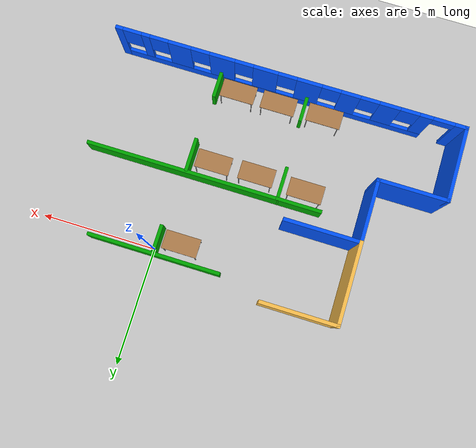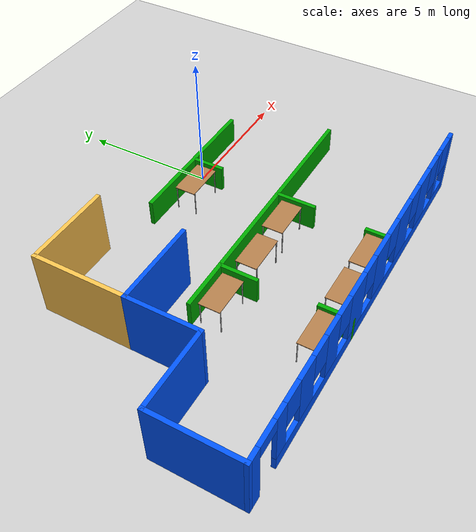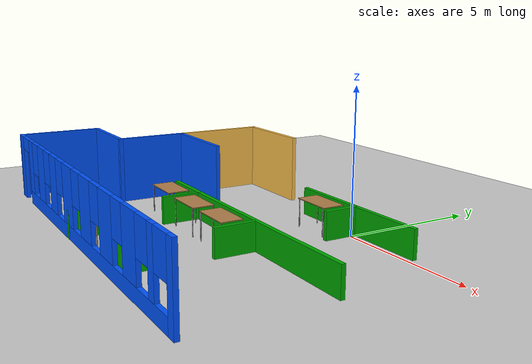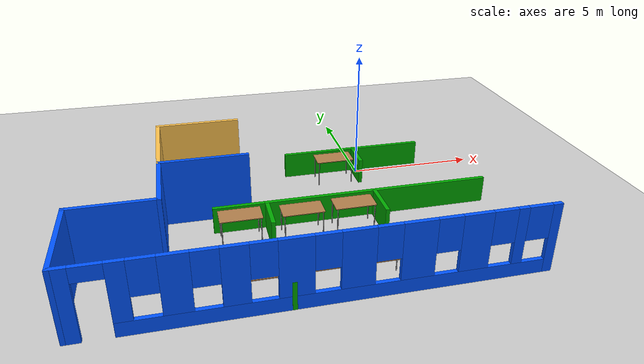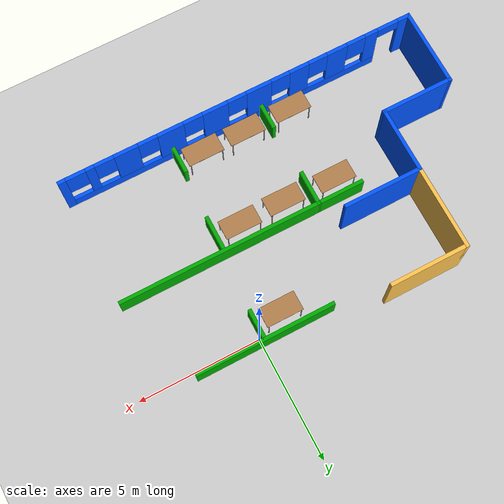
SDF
<sdf version="1.6">
 <world name="default">
  <model name="ground_plane">
   <static>1</static>
   <link name="link">
    <collision name="collision">
     <geometry><plane><normal>0 0 1</normal><size>100 100</size></plane></geometry>
     <surface><friction><ode><mu>100</mu><mu2>50</mu2></ode></friction></surface>
    </collision>
    <visual name="visual">
     <cast_shadows>0</cast_shadows>
     <geometry><plane><normal>0 0 1</normal><size>100 100</size></plane></geometry>
     <material>
      <script><uri>file://media/materials/scripts/gazebo.material</uri><name>Gazebo/Grey</name></script>
     </material>
    </visual>
   </link>
  </model>
  <model name="AMG">
   <pose>-3.41412 2.5474 0 0 -0 0</pose>
   <link name="Wall_0">
    <pose>-0.000145 -10.6988 0 0 -0 3.14159</pose>
    <visual name="Wall_0_Visual_0">
     <pose>-7.33634 0 1.25 0 -0 0</pose>
     <geometry><box><size>0.327324 0.15 2.5</size></box></geometry>
     <material>
      <script><uri>file://media/materials/scripts/gazebo.material</uri><name>Gazebo/Grey</name></script>
      <ambient>0 0.333333 1 1</ambient>
     </material>
     <meta><layer>0</layer></meta>
    </visual>
    <collision name="Wall_0_Collision_0">
     <geometry><box><size>0.327324 0.15 2.5</size></box></geometry>
     <pose>-7.33634 0 1.25 0 -0 0</pose>
    </collision>
    <visual name="Wall_0_Visual_1">
     <pose>7.22017 0 1.25 0 -0 0</pose>
     <geometry><box><size>0.559664 0.15 2.5</size></box></geometry>
     <material>
      <script><uri>file://media/materials/scripts/gazebo.material</uri><name>Gazebo/Grey</name></script>
      <ambient>0 0.333333 1 1</ambient>
     </material>
     <meta><layer>0</layer></meta>
    </visual>
    <collision name="Wall_0_Collision_1">
     <geometry><box><size>0.559664 0.15 2.5</size></box></geometry>
     <pose>7.22017 0 1.25 0 -0 0</pose>
    </collision>
    <visual name="Wall_0_Visual_2">
     <pose>-0.56617 0 0.25 0 -0 0</pose>
     <geometry><box><size>13.213 0.15 0.5</size></box></geometry>
     <material>
      <script><uri>file://media/materials/scripts/gazebo.material</uri><name>Gazebo/Grey</name></script>
      <ambient>0 0.333333 1 1</ambient>
     </material>
     <meta><layer>0</layer></meta>
    </visual>
    <collision name="Wall_0_Collision_2">
     <geometry><box><size>13.213 0.15 0.5</size></box></geometry>
     <pose>-0.56617 0 0.25 0 -0 0</pose>
    </collision>
    <visual name="Wall_0_Visual_3">
     <pose>-6.1917 0 1.5 0 -0 0</pose>
     <geometry><box><size>0.361953 0.15 2</size></box></geometry>
     <material>
      <script><uri>file://media/materials/scripts/gazebo.material</uri><name>Gazebo/Grey</name></script>
      <ambient>0 0.333333 1 1</ambient>
     </material>
     <meta><layer>0</layer></meta>
    </visual>
    <collision name="Wall_0_Collision_3">
     <geometry><box><size>0.361953 0.15 2</size></box></geometry>
     <pose>-6.1917 0 1.5 0 -0 0</pose>
    </collision>
    <visual name="Wall_0_Visual_4">
     <pose>-4.71592 0 1.5 0 -0 0</pose>
     <geometry><box><size>0.989614 0.15 2</size></box></geometry>
     <material>
      <script><uri>file://media/materials/scripts/gazebo.material</uri><name>Gazebo/Grey</name></script>
      <ambient>0 0.333333 1 1</ambient>
     </material>
     <meta><layer>0</layer></meta>
    </visual>
    <collision name="Wall_0_Collision_4">
     <geometry><box><size>0.989614 0.15 2</size></box></geometry>
     <pose>-4.71592 0 1.5 0 -0 0</pose>
    </collision>
    <visual name="Wall_0_Visual_5">
     <pose>-2.8768 0 1.5 0 -0 0</pose>
     <geometry><box><size>1.08861 0.15 2</size></box></geometry>
     <material>
      <script><uri>file://media/materials/scripts/gazebo.material</uri><name>Gazebo/Grey</name></script>
      <ambient>0 0.333333 1 1</ambient>
     </material>
     <meta><layer>0</layer></meta>
    </visual>
    <collision name="Wall_0_Collision_5">
     <geometry><box><size>1.08861 0.15 2</size></box></geometry>
     <pose>-2.8768 0 1.5 0 -0 0</pose>
    </collision>
    <visual name="Wall_0_Visual_6">
     <pose>-1.00149 0 1.5 0 -0 0</pose>
     <geometry><box><size>1.06201 0.15 2</size></box></geometry>
     <material>
      <script><uri>file://media/materials/scripts/gazebo.material</uri><name>Gazebo/Grey</name></script>
      <ambient>0 0.333333 1 1</ambient>
     </material>
     <meta><layer>0</layer></meta>
    </visual>
    <collision name="Wall_0_Collision_6">
     <geometry><box><size>1.06201 0.15 2</size></box></geometry>
     <pose>-1.00149 0 1.5 0 -0 0</pose>
    </collision>
    <visual name="Wall_0_Visual_7">
     <pose>0.860526 0 1.5 0 -0 0</pose>
     <geometry><box><size>1.06201 0.15 2</size></box></geometry>
     <material>
      <script><uri>file://media/materials/scripts/gazebo.material</uri><name>Gazebo/Grey</name></script>
      <ambient>0 0.333333 1 1</ambient>
     </material>
     <meta><layer>0</layer></meta>
    </visual>
    <collision name="Wall_0_Collision_7">
     <geometry><box><size>1.06201 0.15 2</size></box></geometry>
     <pose>0.860526 0 1.5 0 -0 0</pose>
    </collision>
    <visual name="Wall_0_Visual_8">
     <pose>2.60284 0 1.5 0 -0 0</pose>
     <geometry><box><size>0.822612 0.15 2</size></box></geometry>
     <material>
      <script><uri>file://media/materials/scripts/gazebo.material</uri><name>Gazebo/Grey</name></script>
      <ambient>0 0.333333 1 1</ambient>
     </material>
     <meta><layer>0</layer></meta>
    </visual>
    <collision name="Wall_0_Collision_8">
     <geometry><box><size>0.822612 0.15 2</size></box></geometry>
     <pose>2.60284 0 1.5 0 -0 0</pose>
    </collision>
    <visual name="Wall_0_Visual_9">
     <pose>4.25205 0 1.5 0 -0 0</pose>
     <geometry><box><size>0.875812 0.15 2</size></box></geometry>
     <material>
      <script><uri>file://media/materials/scripts/gazebo.material</uri><name>Gazebo/Grey</name></script>
      <ambient>0 0.333333 1 1</ambient>
     </material>
     <meta><layer>0</layer></meta>
    </visual>
    <collision name="Wall_0_Collision_9">
     <geometry><box><size>0.875812 0.15 2</size></box></geometry>
     <pose>4.25205 0 1.5 0 -0 0</pose>
    </collision>
    <visual name="Wall_0_Visual_10">
     <pose>5.76515 0 1.5 0 -0 0</pose>
     <geometry><box><size>0.550378 0.15 2</size></box></geometry>
     <material>
      <script><uri>file://media/materials/scripts/gazebo.material</uri><name>Gazebo/Grey</name></script>
      <ambient>0 0.333333 1 1</ambient>
     </material>
     <meta><layer>0</layer></meta>
    </visual>
    <collision name="Wall_0_Collision_10">
     <geometry><box><size>0.550378 0.15 2</size></box></geometry>
     <pose>5.76515 0 1.5 0 -0 0</pose>
    </collision>
    <visual name="Wall_0_Visual_11">
     <pose>-6.77268 0 1.9 0 -0 0</pose>
     <geometry><box><size>0.8 0.15 1.2</size></box></geometry>
     <material>
      <script><uri>file://media/materials/scripts/gazebo.material</uri><name>Gazebo/Grey</name></script>
      <ambient>0 0.333333 1 1</ambient>
     </material>
     <meta><layer>0</layer></meta>
    </visual>
    <collision name="Wall_0_Collision_11">
     <geometry><box><size>0.8 0.15 1.2</size></box></geometry>
     <pose>-6.77268 0 1.9 0 -0 0</pose>
    </collision>
    <visual name="Wall_0_Visual_12">
     <pose>-5.61072 0 1.9 0 -0 0</pose>
     <geometry><box><size>0.8 0.15 1.2</size></box></geometry>
     <material>
      <script><uri>file://media/materials/scripts/gazebo.material</uri><name>Gazebo/Grey</name></script>
      <ambient>0 0.333333 1 1</ambient>
     </material>
     <meta><layer>0</layer></meta>
    </visual>
    <collision name="Wall_0_Collision_12">
     <geometry><box><size>0.8 0.15 1.2</size></box></geometry>
     <pose>-5.61072 0 1.9 0 -0 0</pose>
    </collision>
    <visual name="Wall_0_Visual_13">
     <pose>-3.82111 0 1.9 0 -0 0</pose>
     <geometry><box><size>0.8 0.15 1.2</size></box></geometry>
     <material>
      <script><uri>file://media/materials/scripts/gazebo.material</uri><name>Gazebo/Grey</name></script>
      <ambient>0 0.333333 1 1</ambient>
     </material>
     <meta><layer>0</layer></meta>
    </visual>
    <collision name="Wall_0_Collision_13">
     <geometry><box><size>0.8 0.15 1.2</size></box></geometry>
     <pose>-3.82111 0 1.9 0 -0 0</pose>
    </collision>
    <visual name="Wall_0_Visual_14">
     <pose>-1.9325 0 1.9 0 -0 0</pose>
     <geometry><box><size>0.8 0.15 1.2</size></box></geometry>
     <material>
      <script><uri>file://media/materials/scripts/gazebo.material</uri><name>Gazebo/Grey</name></script>
      <ambient>0 0.333333 1 1</ambient>
     </material>
     <meta><layer>0</layer></meta>
    </visual>
    <collision name="Wall_0_Collision_14">
     <geometry><box><size>0.8 0.15 1.2</size></box></geometry>
     <pose>-1.9325 0 1.9 0 -0 0</pose>
    </collision>
    <visual name="Wall_0_Visual_15">
     <pose>-0.070481 0 1.9 0 -0 0</pose>
     <geometry><box><size>0.8 0.15 1.2</size></box></geometry>
     <material>
      <script><uri>file://media/materials/scripts/gazebo.material</uri><name>Gazebo/Grey</name></script>
      <ambient>0 0.333333 1 1</ambient>
     </material>
     <meta><layer>0</layer></meta>
    </visual>
    <collision name="Wall_0_Collision_15">
     <geometry><box><size>0.8 0.15 1.2</size></box></geometry>
     <pose>-0.070481 0 1.9 0 -0 0</pose>
    </collision>
    <visual name="Wall_0_Visual_16">
     <pose>1.79153 0 1.9 0 -0 0</pose>
     <geometry><box><size>0.8 0.15 1.2</size></box></geometry>
     <material>
      <script><uri>file://media/materials/scripts/gazebo.material</uri><name>Gazebo/Grey</name></script>
      <ambient>0 0.333333 1 1</ambient>
     </material>
     <meta><layer>0</layer></meta>
    </visual>
    <collision name="Wall_0_Collision_16">
     <geometry><box><size>0.8 0.15 1.2</size></box></geometry>
     <pose>1.79153 0 1.9 0 -0 0</pose>
    </collision>
    <visual name="Wall_0_Visual_17">
     <pose>3.41414 0 1.9 0 -0 0</pose>
     <geometry><box><size>0.8 0.15 1.2</size></box></geometry>
     <material>
      <script><uri>file://media/materials/scripts/gazebo.material</uri><name>Gazebo/Grey</name></script>
      <ambient>0 0.333333 1 1</ambient>
     </material>
     <meta><layer>0</layer></meta>
    </visual>
    <collision name="Wall_0_Collision_17">
     <geometry><box><size>0.8 0.15 1.2</size></box></geometry>
     <pose>3.41414 0 1.9 0 -0 0</pose>
    </collision>
    <visual name="Wall_0_Visual_18">
     <pose>5.08996 0 1.9 0 -0 0</pose>
     <geometry><box><size>0.8 0.15 1.2</size></box></geometry>
     <material>
      <script><uri>file://media/materials/scripts/gazebo.material</uri><name>Gazebo/Grey</name></script>
      <ambient>0 0.333333 1 1</ambient>
     </material>
     <meta><layer>0</layer></meta>
    </visual>
    <collision name="Wall_0_Collision_18">
     <geometry><box><size>0.8 0.15 1.2</size></box></geometry>
     <pose>5.08996 0 1.9 0 -0 0</pose>
    </collision>
    <visual name="Wall_0_Visual_19">
     <pose>6.49034 0 2.25 0 -0 0</pose>
     <geometry><box><size>0.9 0.15 0.5</size></box></geometry>
     <material>
      <script><uri>file://media/materials/scripts/gazebo.material</uri><name>Gazebo/Grey</name></script>
      <ambient>0 0.333333 1 1</ambient>
     </material>
     <meta><layer>0</layer></meta>
    </visual>
    <collision name="Wall_0_Collision_19">
     <geometry><box><size>0.9 0.15 0.5</size></box></geometry>
     <pose>6.49034 0 2.25 0 -0 0</pose>
    </collision>
   </link>
   <link name="Wall_107">
    <collision name="Wall_107_Collision">
     <geometry><box><size>8.5 0.15 1</size></box></geometry>
     <pose>0 0 0.5 0 -0 0</pose>
    </collision>
    <visual name="Wall_107_Visual">
     <pose>0 0 0.5 0 -0 0</pose>
     <geometry><box><size>8.5 0.15 1</size></box></geometry>
     <material>
      <script><uri>file://media/materials/scripts/gazebo.material</uri><name>Gazebo/Grey</name></script>
      <ambient>0 0.666667 0 1</ambient>
     </material>
     <meta><layer>0</layer></meta>
    </visual>
    <pose>3.21014 -5.9984 0 0 -0 0</pose>
   </link>
   <link name="Wall_18">
    <collision name="Wall_18_Collision">
     <geometry><box><size>1.5 0.15 1</size></box></geometry>
     <pose>0 0 0.5 0 -0 0</pose>
    </collision>
    <visual name="Wall_18_Visual">
     <pose>0 0 0.5 0 -0 0</pose>
     <geometry><box><size>1.5 0.15 1</size></box></geometry>
     <material>
      <script><uri>file://media/materials/scripts/gazebo.material</uri><name>Gazebo/Grey</name></script>
      <ambient>0 0.666667 0 1</ambient>
     </material>
     <meta><layer>0</layer></meta>
    </visual>
    <pose>3.06514 -6.7504 0 0 0 -1.5708</pose>
   </link>
   <link name="Wall_21">
    <collision name="Wall_21_Collision">
     <geometry><box><size>1.5 0.15 1</size></box></geometry>
     <pose>0 0 0.5 0 -0 0</pose>
    </collision>
    <visual name="Wall_21_Visual">
     <pose>0 0 0.5 0 -0 0</pose>
     <geometry><box><size>1.5 0.15 1</size></box></geometry>
     <material>
      <script><uri>file://media/materials/scripts/gazebo.material</uri><name>Gazebo/Grey</name></script>
      <ambient>0 0.666667 0 1</ambient>
     </material>
     <meta><layer>0</layer></meta>
    </visual>
    <pose>-0.969865 -6.6734 0 0 0 -1.5782</pose>
   </link>
   <link name="Wall_23">
    <collision name="Wall_23_Collision">
     <geometry><box><size>2.01028 0.15 1</size></box></geometry>
     <pose>0 0 0.5 0 -0 0</pose>
    </collision>
    <visual name="Wall_23_Visual">
     <pose>0 0 0.5 0 -0 0</pose>
     <geometry><box><size>2.01028 0.15 1</size></box></geometry>
     <material>
      <script><uri>file://media/materials/scripts/gazebo.material</uri><name>Gazebo/Grey</name></script>
      <ambient>0 0.666667 0 1</ambient>
     </material>
     <meta><layer>0</layer></meta>
    </visual>
    <pose>-1.89487 -5.9984 0 0 -0 3.14159</pose>
   </link>
   <link name="Wall_25">
    <collision name="Wall_25_Collision">
     <geometry><box><size>1.25 0.15 1</size></box></geometry>
     <pose>0 0 0.5 0 -0 0</pose>
    </collision>
    <visual name="Wall_25_Visual">
     <pose>0 0 0.5 0 -0 0</pose>
     <geometry><box><size>1.25 0.15 1</size></box></geometry>
     <material>
      <script><uri>file://media/materials/scripts/gazebo.material</uri><name>Gazebo/Grey</name></script>
      <ambient>0 0.666667 0 1</ambient>
     </material>
     <meta><layer>0</layer></meta>
    </visual>
    <pose>2.92213 -10.0984 0 0 -0 1.5708</pose>
   </link>
   <link name="Wall_27">
    <collision name="Wall_27_Collision">
     <geometry><box><size>1.25 0.15 1</size></box></geometry>
     <pose>0 0 0.5 0 -0 0</pose>
    </collision>
    <visual name="Wall_27_Visual">
     <pose>0 0 0.5 0 -0 0</pose>
     <geometry><box><size>1.25 0.15 1</size></box></geometry>
     <material>
      <script><uri>file://media/materials/scripts/gazebo.material</uri><name>Gazebo/Grey</name></script>
      <ambient>0 0.666667 0 1</ambient>
     </material>
     <meta><layer>0</layer></meta>
    </visual>
    <pose>-0.934865 -10.1514 0 0 -0 1.5708</pose>
   </link>
   <link name="Wall_29">
    <collision name="Wall_29_Collision">
     <geometry><box><size>3.25 0.15 2.5</size></box></geometry>
     <pose>0 0 1.25 0 -0 0</pose>
    </collision>
    <visual name="Wall_29_Visual">
     <pose>0 0 1.25 0 -0 0</pose>
     <geometry><box><size>3.25 0.15 2.5</size></box></geometry>
     <material>
      <script><uri>file://media/materials/scripts/gazebo.material</uri><name>Gazebo/Grey</name></script>
      <ambient>0 0.333333 1 1</ambient>
     </material>
     <meta><layer>0</layer></meta>
    </visual>
    <pose>-7.42514 -9.14879 0 0 -0 1.5708</pose>
   </link>
   <link name="Wall_30">
    <collision name="Wall_30_Collision">
     <geometry><box><size>3 0.15 2.5</size></box></geometry>
     <pose>0 0 1.25 0 -0 0</pose>
    </collision>
    <visual name="Wall_30_Visual">
     <pose>0 0 1.25 0 -0 0</pose>
     <geometry><box><size>3 0.15 2.5</size></box></geometry>
     <material>
      <script><uri>file://media/materials/scripts/gazebo.material</uri><name>Gazebo/Grey</name></script>
      <ambient>0 0.333333 1 1</ambient>
     </material>
     <meta><layer>0</layer></meta>
    </visual>
    <pose>-6.00014 -7.59879 0 0 -0 0</pose>
   </link>
   <link name="Wall_31">
    <collision name="Wall_31_Collision">
     <geometry><box><size>2.75 0.15 2.5</size></box></geometry>
     <pose>0 0 1.25 0 -0 0</pose>
    </collision>
    <visual name="Wall_31_Visual">
     <pose>0 0 1.25 0 -0 0</pose>
     <geometry><box><size>2.75 0.15 2.5</size></box></geometry>
     <material>
      <script><uri>file://media/materials/scripts/gazebo.material</uri><name>Gazebo/Grey</name></script>
      <ambient>0 0.333333 1 1</ambient>
     </material>
     <meta><layer>0</layer></meta>
    </visual>
    <pose>-4.57515 -6.2988 0 0 -0 1.5708</pose>
   </link>
   <link name="Wall_51">
    <collision name="Wall_51_Collision">
     <geometry><box><size>3.25 0.15 2.5</size></box></geometry>
     <pose>0 0 1.25 0 -0 0</pose>
    </collision>
    <visual name="Wall_51_Visual">
     <pose>0 0 1.25 0 -0 0</pose>
     <geometry><box><size>3.25 0.15 2.5</size></box></geometry>
     <material>
      <script><uri>file://media/materials/scripts/gazebo.material</uri><name>Gazebo/Grey</name></script>
      <ambient>0 0.333333 1 1</ambient>
     </material>
     <meta><layer>0</layer></meta>
    </visual>
    <pose>-3.02515 -4.9988 0 0 -0 0</pose>
   </link>
   <link name="Wall_76">
    <collision name="Wall_76_Collision">
     <geometry><box><size>5.75 0.15 1</size></box></geometry>
     <pose>0 0 0.5 0 -0 0</pose>
    </collision>
    <visual name="Wall_76_Visual">
     <pose>0 0 0.5 0 -0 0</pose>
     <geometry><box><size>5.75 0.15 1</size></box></geometry>
     <material>
      <script><uri>file://media/materials/scripts/gazebo.material</uri><name>Gazebo/Grey</name></script>
      <ambient>0 0.666667 0 1</ambient>
     </material>
     <meta><layer>0</layer></meta>
    </visual>
    <pose>3.27514 -2.2984 0 0 -0 3.14159</pose>
   </link>
   <link name="Wall_78">
    <collision name="Wall_78_Collision">
     <geometry><box><size>1.25 0.15 1</size></box></geometry>
     <pose>0 0 0.5 0 -0 0</pose>
    </collision>
    <visual name="Wall_78_Visual">
     <pose>0 0 0.5 0 -0 0</pose>
     <geometry><box><size>1.25 0.15 1</size></box></geometry>
     <material>
      <script><uri>file://media/materials/scripts/gazebo.material</uri><name>Gazebo/Grey</name></script>
      <ambient>0 0.666667 0 1</ambient>
     </material>
     <meta><layer>0</layer></meta>
    </visual>
    <pose>3.30314 -2.9194 0 0 0 -1.5708</pose>
   </link>
   <link name="Wall_80">
    <collision name="Wall_80_Collision">
     <geometry><box><size>3.5 0.15 2.5</size></box></geometry>
     <pose>0 0 1.25 0 -0 0</pose>
    </collision>
    <visual name="Wall_80_Visual">
     <pose>0 0 1.25 0 -0 0</pose>
     <geometry><box><size>3.5 0.15 2.5</size></box></geometry>
     <material>
      <script><uri>file://media/materials/scripts/gazebo.material</uri><name>Gazebo/Grey</name></script>
      <ambient>1 0.764706 0.305882 1</ambient>
     </material>
     <meta><layer>0</layer></meta>
    </visual>
    <pose>-4.57515 -3.3238 0 0 -0 1.5708</pose>
   </link>
   <link name="Wall_81">
    <collision name="Wall_81_Collision">
     <geometry><box><size>3.25 0.15 2.5</size></box></geometry>
     <pose>0 0 1.25 0 -0 0</pose>
    </collision>
    <visual name="Wall_81_Visual">
     <pose>0 0 1.25 0 -0 0</pose>
     <geometry><box><size>3.25 0.15 2.5</size></box></geometry>
     <material>
      <script><uri>file://media/materials/scripts/gazebo.material</uri><name>Gazebo/Grey</name></script>
      <ambient>1 0.764706 0.305882 1</ambient>
     </material>
     <meta><layer>0</layer></meta>
    </visual>
    <pose>-3.02515 -1.6488 0 0 -0 0</pose>
   </link>
   <static>1</static>
  </model>
  <model name="table_0">
   <static>1</static>
   <link name="link">
    <collision name="surface">
     <pose>0 0 1 0 -0 0</pose>
     <geometry><box><size>1.5 0.8 0.03</size></box></geometry>
     <surface><friction><ode><mu>0.6</mu><mu2>0.6</mu2></ode></friction></surface>
    </collision>
    <visual name="visual1">
     <pose>0 0 1 0 -0 0</pose>
     <geometry><box><size>1.5 0.8 0.03</size></box></geometry>
     <material>
      <script><uri>file://media/materials/scripts/gazebo.material</uri><name>Gazebo/Wood</name></script>
     </material>
    </visual>
    <collision name="front_left_leg">
     <pose>0.68 0.38 0.5 0 -0 0</pose>
     <geometry><cylinder><radius>0.02</radius><length>1</length></cylinder></geometry>
    </collision>
    <visual name="front_left_leg">
     <pose>0.68 0.38 0.5 0 -0 0</pose>
     <geometry><cylinder><radius>0.02</radius><length>1</length></cylinder></geometry>
     <material>
      <script><uri>file://media/materials/scripts/gazebo.material</uri><name>Gazebo/Grey</name></script>
     </material>
    </visual>
    <collision name="front_right_leg">
     <pose>0.68 -0.38 0.5 0 -0 0</pose>
     <geometry><cylinder><radius>0.02</radius><length>1</length></cylinder></geometry>
    </collision>
    <visual name="front_right_leg">
     <pose>0.68 -0.38 0.5 0 -0 0</pose>
     <geometry><cylinder><radius>0.02</radius><length>1</length></cylinder></geometry>
     <material>
      <script><uri>file://media/materials/scripts/gazebo.material</uri><name>Gazebo/Grey</name></script>
     </material>
    </visual>
    <collision name="back_right_leg">
     <pose>-0.68 -0.38 0.5 0 -0 0</pose>
     <geometry><cylinder><radius>0.02</radius><length>1</length></cylinder></geometry>
    </collision>
    <visual name="back_right_leg">
     <pose>-0.68 -0.38 0.5 0 -0 0</pose>
     <geometry><cylinder><radius>0.02</radius><length>1</length></cylinder></geometry>
     <material>
      <script><uri>file://media/materials/scripts/gazebo.material</uri><name>Gazebo/Grey</name></script>
     </material>
    </visual>
    <collision name="back_left_leg">
     <pose>-0.68 0.38 0.5 0 -0 0</pose>
     <geometry><cylinder><radius>0.02</radius><length>1</length></cylinder></geometry>
    </collision>
    <visual name="back_left_leg">
     <pose>-0.68 0.38 0.5 0 -0 0</pose>
     <geometry><cylinder><radius>0.02</radius><length>1</length></cylinder></geometry>
     <material>
      <script><uri>file://media/materials/scripts/gazebo.material</uri><name>Gazebo/Grey</name></script>
     </material>
    </visual>
   </link>
   <pose>-1.12833 -0.466321 0 0 -0 0</pose>
  </model>
  <model name="table_1">
   <static>1</static>
   <link name="link">
    <collision name="surface">
     <pose>0 0 1 0 -0 0</pose>
     <geometry><box><size>1.5 0.8 0.03</size></box></geometry>
     <surface><friction><ode><mu>0.6</mu><mu2>0.6</mu2></ode></friction></surface>
    </collision>
    <visual name="visual1">
     <pose>0 0 1 0 -0 0</pose>
     <geometry><box><size>1.5 0.8 0.03</size></box></geometry>
     <material>
      <script><uri>file://media/materials/scripts/gazebo.material</uri><name>Gazebo/Wood</name></script>
     </material>
    </visual>
    <collision name="front_left_leg">
     <pose>0.68 0.38 0.5 0 -0 0</pose>
     <geometry><cylinder><radius>0.02</radius><length>1</length></cylinder></geometry>
    </collision>
    <visual name="front_left_leg">
     <pose>0.68 0.38 0.5 0 -0 0</pose>
     <geometry><cylinder><radius>0.02</radius><length>1</length></cylinder></geometry>
     <material>
      <script><uri>file://media/materials/scripts/gazebo.material</uri><name>Gazebo/Grey</name></script>
     </material>
    </visual>
    <collision name="front_right_leg">
     <pose>0.68 -0.38 0.5 0 -0 0</pose>
     <geometry><cylinder><radius>0.02</radius><length>1</length></cylinder></geometry>
    </collision>
    <visual name="front_right_leg">
     <pose>0.68 -0.38 0.5 0 -0 0</pose>
     <geometry><cylinder><radius>0.02</radius><length>1</length></cylinder></geometry>
     <material>
      <script><uri>file://media/materials/scripts/gazebo.material</uri><name>Gazebo/Grey</name></script>
     </material>
    </visual>
    <collision name="back_right_leg">
     <pose>-0.68 -0.38 0.5 0 -0 0</pose>
     <geometry><cylinder><radius>0.02</radius><length>1</length></cylinder></geometry>
    </collision>
    <visual name="back_right_leg">
     <pose>-0.68 -0.38 0.5 0 -0 0</pose>
     <geometry><cylinder><radius>0.02</radius><length>1</length></cylinder></geometry>
     <material>
      <script><uri>file://media/materials/scripts/gazebo.material</uri><name>Gazebo/Grey</name></script>
     </material>
    </visual>
    <collision name="back_left_leg">
     <pose>-0.68 0.38 0.5 0 -0 0</pose>
     <geometry><cylinder><radius>0.02</radius><length>1</length></cylinder></geometry>
    </collision>
    <visual name="back_left_leg">
     <pose>-0.68 0.38 0.5 0 -0 0</pose>
     <geometry><cylinder><radius>0.02</radius><length>1</length></cylinder></geometry>
     <material>
      <script><uri>file://media/materials/scripts/gazebo.material</uri><name>Gazebo/Grey</name></script>
     </material>
    </visual>
   </link>
   <pose>-3.25785 -4.20118 0 0 -0 0</pose>
  </model>
  <model name="table_1_clone">
   <static>1</static>
   <link name="link">
    <collision name="surface">
     <pose>0 0 1 0 -0 0</pose>
     <geometry><box><size>1.5 0.8 0.03</size></box></geometry>
     <surface><friction><ode><mu>0.6</mu><mu2>0.6</mu2></ode></friction></surface>
    </collision>
    <visual name="visual1">
     <pose>0 0 1 0 -0 0</pose>
     <geometry><box><size>1.5 0.8 0.03</size></box></geometry>
     <material>
      <script><uri>file://media/materials/scripts/gazebo.material</uri><name>Gazebo/Wood</name></script>
     </material>
    </visual>
    <collision name="front_left_leg">
     <pose>0.68 0.38 0.5 0 -0 0</pose>
     <geometry><cylinder><radius>0.02</radius><length>1</length></cylinder></geometry>
    </collision>
    <visual name="front_left_leg">
     <pose>0.68 0.38 0.5 0 -0 0</pose>
     <geometry><cylinder><radius>0.02</radius><length>1</length></cylinder></geometry>
     <material>
      <script><uri>file://media/materials/scripts/gazebo.material</uri><name>Gazebo/Grey</name></script>
     </material>
    </visual>
    <collision name="front_right_leg">
     <pose>0.68 -0.38 0.5 0 -0 0</pose>
     <geometry><cylinder><radius>0.02</radius><length>1</length></cylinder></geometry>
    </collision>
    <visual name="front_right_leg">
     <pose>0.68 -0.38 0.5 0 -0 0</pose>
     <geometry><cylinder><radius>0.02</radius><length>1</length></cylinder></geometry>
     <material>
      <script><uri>file://media/materials/scripts/gazebo.material</uri><name>Gazebo/Grey</name></script>
     </material>
    </visual>
    <collision name="back_right_leg">
     <pose>-0.68 -0.38 0.5 0 -0 0</pose>
     <geometry><cylinder><radius>0.02</radius><length>1</length></cylinder></geometry>
    </collision>
    <visual name="back_right_leg">
     <pose>-0.68 -0.38 0.5 0 -0 0</pose>
     <geometry><cylinder><radius>0.02</radius><length>1</length></cylinder></geometry>
     <material>
      <script><uri>file://media/materials/scripts/gazebo.material</uri><name>Gazebo/Grey</name></script>
     </material>
    </visual>
    <collision name="back_left_leg">
     <pose>-0.68 0.38 0.5 0 -0 0</pose>
     <geometry><cylinder><radius>0.02</radius><length>1</length></cylinder></geometry>
    </collision>
    <visual name="back_left_leg">
     <pose>-0.68 0.38 0.5 0 -0 0</pose>
     <geometry><cylinder><radius>0.02</radius><length>1</length></cylinder></geometry>
     <material>
      <script><uri>file://media/materials/scripts/gazebo.material</uri><name>Gazebo/Grey</name></script>
     </material>
    </visual>
   </link>
   <pose>-5.41921 -4.11342 0 0 -0 0</pose>
  </model>
  <model name="table_1_clone_0">
   <static>1</static>
   <link name="link">
    <collision name="surface">
     <pose>0 0 1 0 -0 0</pose>
     <geometry><box><size>1.5 0.8 0.03</size></box></geometry>
     <surface><friction><ode><mu>0.6</mu><mu2>0.6</mu2></ode></friction></surface>
    </collision>
    <visual name="visual1">
     <pose>0 0 1 0 -0 0</pose>
     <geometry><box><size>1.5 0.8 0.03</size></box></geometry>
     <material>
      <script><uri>file://media/materials/scripts/gazebo.material</uri><name>Gazebo/Wood</name></script>
     </material>
    </visual>
    <collision name="front_left_leg">
     <pose>0.68 0.38 0.5 0 -0 0</pose>
     <geometry><cylinder><radius>0.02</radius><length>1</length></cylinder></geometry>
    </collision>
    <visual name="front_left_leg">
     <pose>0.68 0.38 0.5 0 -0 0</pose>
     <geometry><cylinder><radius>0.02</radius><length>1</length></cylinder></geometry>
     <material>
      <script><uri>file://media/materials/scripts/gazebo.material</uri><name>Gazebo/Grey</name></script>
     </material>
    </visual>
    <collision name="front_right_leg">
     <pose>0.68 -0.38 0.5 0 -0 0</pose>
     <geometry><cylinder><radius>0.02</radius><length>1</length></cylinder></geometry>
    </collision>
    <visual name="front_right_leg">
     <pose>0.68 -0.38 0.5 0 -0 0</pose>
     <geometry><cylinder><radius>0.02</radius><length>1</length></cylinder></geometry>
     <material>
      <script><uri>file://media/materials/scripts/gazebo.material</uri><name>Gazebo/Grey</name></script>
     </material>
    </visual>
    <collision name="back_right_leg">
     <pose>-0.68 -0.38 0.5 0 -0 0</pose>
     <geometry><cylinder><radius>0.02</radius><length>1</length></cylinder></geometry>
    </collision>
    <visual name="back_right_leg">
     <pose>-0.68 -0.38 0.5 0 -0 0</pose>
     <geometry><cylinder><radius>0.02</radius><length>1</length></cylinder></geometry>
     <material>
      <script><uri>file://media/materials/scripts/gazebo.material</uri><name>Gazebo/Grey</name></script>
     </material>
    </visual>
    <collision name="back_left_leg">
     <pose>-0.68 0.38 0.5 0 -0 0</pose>
     <geometry><cylinder><radius>0.02</radius><length>1</length></cylinder></geometry>
    </collision>
    <visual name="back_left_leg">
     <pose>-0.68 0.38 0.5 0 -0 0</pose>
     <geometry><cylinder><radius>0.02</radius><length>1</length></cylinder></geometry>
     <material>
      <script><uri>file://media/materials/scripts/gazebo.material</uri><name>Gazebo/Grey</name></script>
     </material>
    </visual>
   </link>
   <pose>-1.36331 -4.1597 0 0 -0 0</pose>
  </model>
  <model name="table_1_clone_10">
   <static>1</static>
   <link name="link">
    <collision name="surface">
     <pose>0 0 1 0 -0 0</pose>
     <geometry><box><size>1.5 0.8 0.03</size></box></geometry>
     <surface><friction><ode><mu>0.6</mu><mu2>0.6</mu2></ode></friction></surface>
    </collision>
    <visual name="visual1">
     <pose>0 0 1 0 -0 0</pose>
     <geometry><box><size>1.5 0.8 0.03</size></box></geometry>
     <material>
      <script><uri>file://media/materials/scripts/gazebo.material</uri><name>Gazebo/Wood</name></script>
     </material>
    </visual>
    <collision name="front_left_leg">
     <pose>0.68 0.38 0.5 0 -0 0</pose>
     <geometry><cylinder><radius>0.02</radius><length>1</length></cylinder></geometry>
    </collision>
    <visual name="front_left_leg">
     <pose>0.68 0.38 0.5 0 -0 0</pose>
     <geometry><cylinder><radius>0.02</radius><length>1</length></cylinder></geometry>
     <material>
      <script><uri>file://media/materials/scripts/gazebo.material</uri><name>Gazebo/Grey</name></script>
     </material>
    </visual>
    <collision name="front_right_leg">
     <pose>0.68 -0.38 0.5 0 -0 0</pose>
     <geometry><cylinder><radius>0.02</radius><length>1</length></cylinder></geometry>
    </collision>
    <visual name="front_right_leg">
     <pose>0.68 -0.38 0.5 0 -0 0</pose>
     <geometry><cylinder><radius>0.02</radius><length>1</length></cylinder></geometry>
     <material>
      <script><uri>file://media/materials/scripts/gazebo.material</uri><name>Gazebo/Grey</name></script>
     </material>
    </visual>
    <collision name="back_right_leg">
     <pose>-0.68 -0.38 0.5 0 -0 0</pose>
     <geometry><cylinder><radius>0.02</radius><length>1</length></cylinder></geometry>
    </collision>
    <visual name="back_right_leg">
     <pose>-0.68 -0.38 0.5 0 -0 0</pose>
     <geometry><cylinder><radius>0.02</radius><length>1</length></cylinder></geometry>
     <material>
      <script><uri>file://media/materials/scripts/gazebo.material</uri><name>Gazebo/Grey</name></script>
     </material>
    </visual>
    <collision name="back_left_leg">
     <pose>-0.68 0.38 0.5 0 -0 0</pose>
     <geometry><cylinder><radius>0.02</radius><length>1</length></cylinder></geometry>
    </collision>
    <visual name="back_left_leg">
     <pose>-0.68 0.38 0.5 0 -0 0</pose>
     <geometry><cylinder><radius>0.02</radius><length>1</length></cylinder></geometry>
     <material>
      <script><uri>file://media/materials/scripts/gazebo.material</uri><name>Gazebo/Grey</name></script>
     </material>
    </visual>
   </link>
   <pose>-5.28934 -7.47907 0 0 -0 0</pose>
  </model>
  <model name="table_1_clone_11">
   <static>1</static>
   <link name="link">
    <collision name="surface">
     <pose>0 0 1 0 -0 0</pose>
     <geometry><box><size>1.5 0.8 0.03</size></box></geometry>
     <surface><friction><ode><mu>0.6</mu><mu2>0.6</mu2></ode></friction></surface>
    </collision>
    <visual name="visual1">
     <pose>0 0 1 0 -0 0</pose>
     <geometry><box><size>1.5 0.8 0.03</size></box></geometry>
     <material>
      <script><uri>file://media/materials/scripts/gazebo.material</uri><name>Gazebo/Wood</name></script>
     </material>
    </visual>
    <collision name="front_left_leg">
     <pose>0.68 0.38 0.5 0 -0 0</pose>
     <geometry><cylinder><radius>0.02</radius><length>1</length></cylinder></geometry>
    </collision>
    <visual name="front_left_leg">
     <pose>0.68 0.38 0.5 0 -0 0</pose>
     <geometry><cylinder><radius>0.02</radius><length>1</length></cylinder></geometry>
     <material>
      <script><uri>file://media/materials/scripts/gazebo.material</uri><name>Gazebo/Grey</name></script>
     </material>
    </visual>
    <collision name="front_right_leg">
     <pose>0.68 -0.38 0.5 0 -0 0</pose>
     <geometry><cylinder><radius>0.02</radius><length>1</length></cylinder></geometry>
    </collision>
    <visual name="front_right_leg">
     <pose>0.68 -0.38 0.5 0 -0 0</pose>
     <geometry><cylinder><radius>0.02</radius><length>1</length></cylinder></geometry>
     <material>
      <script><uri>file://media/materials/scripts/gazebo.material</uri><name>Gazebo/Grey</name></script>
     </material>
    </visual>
    <collision name="back_right_leg">
     <pose>-0.68 -0.38 0.5 0 -0 0</pose>
     <geometry><cylinder><radius>0.02</radius><length>1</length></cylinder></geometry>
    </collision>
    <visual name="back_right_leg">
     <pose>-0.68 -0.38 0.5 0 -0 0</pose>
     <geometry><cylinder><radius>0.02</radius><length>1</length></cylinder></geometry>
     <material>
      <script><uri>file://media/materials/scripts/gazebo.material</uri><name>Gazebo/Grey</name></script>
     </material>
    </visual>
    <collision name="back_left_leg">
     <pose>-0.68 0.38 0.5 0 -0 0</pose>
     <geometry><cylinder><radius>0.02</radius><length>1</length></cylinder></geometry>
    </collision>
    <visual name="back_left_leg">
     <pose>-0.68 0.38 0.5 0 -0 0</pose>
     <geometry><cylinder><radius>0.02</radius><length>1</length></cylinder></geometry>
     <material>
      <script><uri>file://media/materials/scripts/gazebo.material</uri><name>Gazebo/Grey</name></script>
     </material>
    </visual>
   </link>
   <pose>-3.25848 -7.45147 0 0 -0 0</pose>
  </model>
  <model name="table_1_clone_12">
   <static>1</static>
   <link name="link">
    <collision name="surface">
     <pose>0 0 1 0 -0 0</pose>
     <geometry><box><size>1.5 0.8 0.03</size></box></geometry>
     <surface><friction><ode><mu>0.6</mu><mu2>0.6</mu2></ode></friction></surface>
    </collision>
    <visual name="visual1">
     <pose>0 0 1 0 -0 0</pose>
     <geometry><box><size>1.5 0.8 0.03</size></box></geometry>
     <material>
      <script><uri>file://media/materials/scripts/gazebo.material</uri><name>Gazebo/Wood</name></script>
     </material>
    </visual>
    <collision name="front_left_leg">
     <pose>0.68 0.38 0.5 0 -0 0</pose>
     <geometry><cylinder><radius>0.02</radius><length>1</length></cylinder></geometry>
    </collision>
    <visual name="front_left_leg">
     <pose>0.68 0.38 0.5 0 -0 0</pose>
     <geometry><cylinder><radius>0.02</radius><length>1</length></cylinder></geometry>
     <material>
      <script><uri>file://media/materials/scripts/gazebo.material</uri><name>Gazebo/Grey</name></script>
     </material>
    </visual>
    <collision name="front_right_leg">
     <pose>0.68 -0.38 0.5 0 -0 0</pose>
     <geometry><cylinder><radius>0.02</radius><length>1</length></cylinder></geometry>
    </collision>
    <visual name="front_right_leg">
     <pose>0.68 -0.38 0.5 0 -0 0</pose>
     <geometry><cylinder><radius>0.02</radius><length>1</length></cylinder></geometry>
     <material>
      <script><uri>file://media/materials/scripts/gazebo.material</uri><name>Gazebo/Grey</name></script>
     </material>
    </visual>
    <collision name="back_right_leg">
     <pose>-0.68 -0.38 0.5 0 -0 0</pose>
     <geometry><cylinder><radius>0.02</radius><length>1</length></cylinder></geometry>
    </collision>
    <visual name="back_right_leg">
     <pose>-0.68 -0.38 0.5 0 -0 0</pose>
     <geometry><cylinder><radius>0.02</radius><length>1</length></cylinder></geometry>
     <material>
      <script><uri>file://media/materials/scripts/gazebo.material</uri><name>Gazebo/Grey</name></script>
     </material>
    </visual>
    <collision name="back_left_leg">
     <pose>-0.68 0.38 0.5 0 -0 0</pose>
     <geometry><cylinder><radius>0.02</radius><length>1</length></cylinder></geometry>
    </collision>
    <visual name="back_left_leg">
     <pose>-0.68 0.38 0.5 0 -0 0</pose>
     <geometry><cylinder><radius>0.02</radius><length>1</length></cylinder></geometry>
     <material>
      <script><uri>file://media/materials/scripts/gazebo.material</uri><name>Gazebo/Grey</name></script>
     </material>
    </visual>
   </link>
   <pose>-1.45322 -7.45583 0 0 -0 0</pose>
  </model>
 </world>
</sdf>
